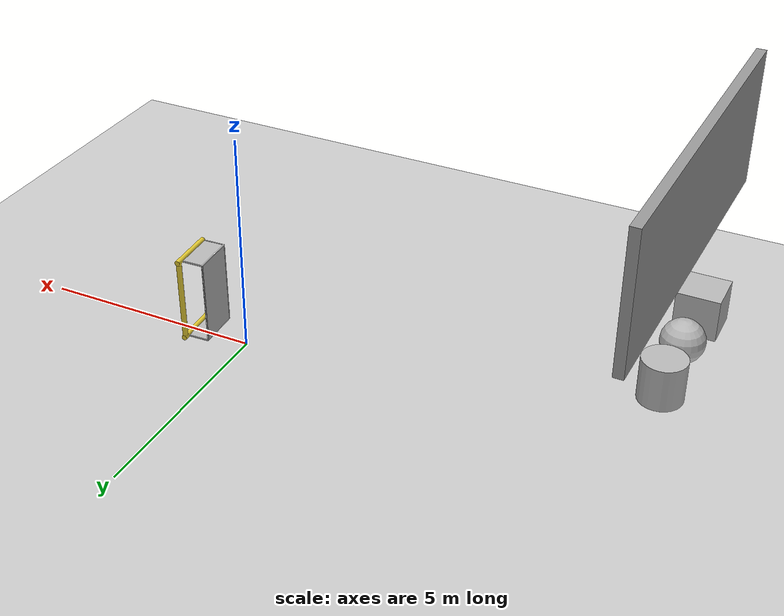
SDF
<sdf version="1.4">
 <world name="default">
  <model name="ground_plane">
   <static>1</static>
   <link name="link">
    <collision name="collision">
     <geometry><plane><normal>0 0 1</normal><size>100 100</size></plane></geometry>
     <surface><friction><ode><mu>100</mu><mu2>50</mu2></ode></friction></surface>
    </collision>
    <visual name="visual">
     <cast_shadows>0</cast_shadows>
     <geometry><plane><normal>0 0 1</normal><size>100 100</size></plane></geometry>
     <material>
      <script><uri>file://media/materials/scripts/gazebo.material</uri><name>Gazebo/Grey</name></script>
     </material>
    </visual>
    <velocity_decay><linear>0</linear><angular>0</angular></velocity_decay>
   </link>
  </model>
  <model name="grey_wall">
   <static>1</static>
   <link name="link">
    <pose>0 0 1.4 0 -0 0</pose>
    <collision name="collision"><geometry><box><size>7.5 0.2 2.8</size></box></geometry></collision>
    <visual name="visual">
     <cast_shadows>0</cast_shadows>
     <geometry><box><size>7.5 0.2 2.8</size></box></geometry>
     <material>
      <script>
       <uri>model://grey_wall/materials/scripts</uri>
       <uri>model://grey_wall/materials/textures</uri>
       <name>vrc/grey_wall</name>
      </script>
     </material>
    </visual>
    <velocity_decay><linear>0</linear><angular>0</angular></velocity_decay>
   </link>
   <pose>-9.25714 -0.23164 4.42606 0 -0 1.55593</pose>
  </model>
  <model name="textured_shapes">
   <pose>-8.70069 -3.6194 0.55 0 -0 0</pose>
   <link name="box">
    <pose>0 -1.5 0 0 -0 0</pose>
    <collision name="collision"><geometry><box><size>1 1 1</size></box></geometry></collision>
    <visual name="visual">
     <geometry><box><size>1 1 1</size></box></geometry>
     <material>
      <script>
       <uri>model://textured_shapes/materials/scripts</uri>
       <uri>model://textured_shapes/materials/textures</uri>
       <name>TexturedShape/Squares</name>
      </script>
     </material>
    </visual>
    <velocity_decay><linear>0</linear><angular>0</angular></velocity_decay>
    <inertial>
     <inertia><ixx>1</ixx><ixy>0</ixy><ixz>0</ixz><iyy>1</iyy><iyz>0</iyz><izz>1</izz></inertia>
     <mass>1</mass>
    </inertial>
   </link>
   <link name="sphere">
    <collision name="collision"><geometry><sphere><radius>0.5</radius></sphere></geometry></collision>
    <visual name="visual">
     <geometry><sphere><radius>0.5</radius></sphere></geometry>
     <material>
      <script>
       <uri>model://textured_shapes/materials/scripts</uri>
       <uri>model://textured_shapes/materials/textures</uri>
       <name>TexturedShape/Squares</name>
      </script>
     </material>
    </visual>
    <velocity_decay><linear>0</linear><angular>0</angular></velocity_decay>
    <inertial>
     <inertia><ixx>1</ixx><ixy>0</ixy><ixz>0</ixz><iyy>1</iyy><iyz>0</iyz><izz>1</izz></inertia>
     <mass>1</mass>
    </inertial>
   </link>
   <link name="cylinder">
    <pose>0 1.5 0 0 -0 0</pose>
    <collision name="collision">
     <geometry><cylinder><radius>0.5</radius><length>1</length></cylinder></geometry>
    </collision>
    <visual name="visual">
     <geometry><cylinder><radius>0.5</radius><length>1</length></cylinder></geometry>
     <material>
      <script>
       <uri>model://textured_shapes/materials/scripts</uri>
       <uri>model://textured_shapes/materials/textures</uri>
       <name>TexturedShape/Squares</name>
      </script>
     </material>
    </visual>
    <velocity_decay><linear>0</linear><angular>0</angular></velocity_decay>
    <inertial>
     <inertia><ixx>1</ixx><ixy>0</ixy><ixz>0</ixz><iyy>1</iyy><iyz>0</iyz><izz>1</izz></inertia>
     <mass>1</mass>
    </inertial>
   </link>
   <static>0</static>
  </model>
  <model name="RoboCup 2014 SPL Goal_2">
   <static>1</static>
   <link name="left_post">
    <pose>0 0.8 0.45 0 -0 0</pose>
    <collision name="collision">
     <geometry><cylinder><radius>0.05</radius><length>0.9</length></cylinder></geometry>
    </collision>
    <visual name="visual">
     <geometry><cylinder><radius>0.05</radius><length>0.9</length></cylinder></geometry>
     <material>
      <script><uri>file://media/materials/scripts/gazebo.material</uri><name>Gazebo/ZincYellow</name></script>
     </material>
    </visual>
    <velocity_decay><linear>0</linear><angular>0</angular></velocity_decay>
   </link>
   <link name="left_support_horiz_lower">
    <pose>0.24 0.8 0.01 0 -0 0</pose>
    <collision name="collision"><geometry><box><size>0.38 0.02 0.02</size></box></geometry></collision>
    <visual name="visual">
     <geometry><box><size>0.38 0.02 0.02</size></box></geometry>
     <material>
      <script><uri>file://media/materials/scripts/gazebo.material</uri><name>Gazebo/White</name></script>
     </material>
    </visual>
    <velocity_decay><linear>0</linear><angular>0</angular></velocity_decay>
   </link>
   <link name="left_support_horiz_upper">
    <pose>0.24 0.8 0.79 0 -0 0</pose>
    <collision name="collision"><geometry><box><size>0.38 0.02 0.02</size></box></geometry></collision>
    <visual name="visual">
     <geometry><box><size>0.38 0.02 0.02</size></box></geometry>
     <material>
      <script><uri>file://media/materials/scripts/gazebo.material</uri><name>Gazebo/White</name></script>
     </material>
    </visual>
    <velocity_decay><linear>0</linear><angular>0</angular></velocity_decay>
   </link>
   <link name="left_support_vertical">
    <pose>0.44 0.8 0.4 3.14159 1.57079 3.14159</pose>
    <collision name="collision"><geometry><box><size>0.8 0.02 0.02</size></box></geometry></collision>
    <visual name="visual">
     <geometry><box><size>0.8 0.02 0.02</size></box></geometry>
     <material>
      <script><uri>file://media/materials/scripts/gazebo.material</uri><name>Gazebo/White</name></script>
     </material>
    </visual>
    <velocity_decay><linear>0</linear><angular>0</angular></velocity_decay>
   </link>
   <link name="right_support_horiz_lower">
    <pose>0.24 -0.8 0.01 0 -0 0</pose>
    <collision name="collision"><geometry><box><size>0.38 0.02 0.02</size></box></geometry></collision>
    <visual name="visual">
     <geometry><box><size>0.38 0.02 0.02</size></box></geometry>
     <material>
      <script><uri>file://media/materials/scripts/gazebo.material</uri><name>Gazebo/White</name></script>
     </material>
    </visual>
    <velocity_decay><linear>0</linear><angular>0</angular></velocity_decay>
   </link>
   <link name="right_support_horiz_upper">
    <pose>0.24 -0.8 0.79 0 -0 0</pose>
    <collision name="collision"><geometry><box><size>0.38 0.02 0.02</size></box></geometry></collision>
    <visual name="visual">
     <geometry><box><size>0.38 0.02 0.02</size></box></geometry>
     <material>
      <script><uri>file://media/materials/scripts/gazebo.material</uri><name>Gazebo/White</name></script>
     </material>
    </visual>
    <velocity_decay><linear>0</linear><angular>0</angular></velocity_decay>
   </link>
   <link name="right_support_vertical">
    <pose>0.44 -0.8 0.4 3.14159 1.57079 3.14159</pose>
    <collision name="collision"><geometry><box><size>0.8 0.02 0.02</size></box></geometry></collision>
    <visual name="visual">
     <geometry><box><size>0.8 0.02 0.02</size></box></geometry>
     <material>
      <script><uri>file://media/materials/scripts/gazebo.material</uri><name>Gazebo/White</name></script>
     </material>
    </visual>
    <velocity_decay><linear>0</linear><angular>0</angular></velocity_decay>
   </link>
   <link name="center_support_horiz_lower">
    <pose>0.44 0 0.01 3.14159 1.57079 3.14159</pose>
    <collision name="collision"><geometry><box><size>0.02 1.58 0.02</size></box></geometry></collision>
    <visual name="visual">
     <geometry><box><size>0.02 1.58 0.02</size></box></geometry>
     <material>
      <script><uri>file://media/materials/scripts/gazebo.material</uri><name>Gazebo/White</name></script>
     </material>
    </visual>
    <velocity_decay><linear>0</linear><angular>0</angular></velocity_decay>
   </link>
   <link name="center_support_horiz_upper">
    <pose>0.44 0 0.79 3.14159 1.57079 3.14159</pose>
    <collision name="collision"><geometry><box><size>0.02 1.58 0.02</size></box></geometry></collision>
    <visual name="visual">
     <geometry><box><size>0.02 1.58 0.02</size></box></geometry>
     <material>
      <script><uri>file://media/materials/scripts/gazebo.material</uri><name>Gazebo/White</name></script>
     </material>
    </visual>
    <velocity_decay><linear>0</linear><angular>0</angular></velocity_decay>
   </link>
   <link name="right_post">
    <pose>0 -0.8 0.45 0 -0 0</pose>
    <collision name="collision">
     <geometry><cylinder><radius>0.05</radius><length>0.9</length></cylinder></geometry>
    </collision>
    <visual name="visual">
     <geometry><cylinder><radius>0.05</radius><length>0.9</length></cylinder></geometry>
     <material>
      <script><uri>file://media/materials/scripts/gazebo.material</uri><name>Gazebo/ZincYellow</name></script>
     </material>
    </visual>
    <velocity_decay><linear>0</linear><angular>0</angular></velocity_decay>
   </link>
   <link name="crossbar">
    <pose>0 0 0.85 1.57 1.57 1.39418e-13</pose>
    <collision name="collision">
     <geometry><cylinder><radius>0.05</radius><length>1.5</length></cylinder></geometry>
    </collision>
    <visual name="visual">
     <geometry><cylinder><radius>0.05</radius><length>1.5</length></cylinder></geometry>
     <material>
      <script><uri>file://media/materials/scripts/gazebo.material</uri><name>Gazebo/ZincYellow</name></script>
     </material>
    </visual>
    <velocity_decay><linear>0</linear><angular>0</angular></velocity_decay>
   </link>
   <link name="center_net">
    <pose>0.44 0 0.4 0 -0 0</pose>
    <collision name="collision"><geometry><box><size>0.01 1.6 0.8</size></box></geometry></collision>
    <visual name="visual">
     <geometry><box><size>0.01 1.6 0.8</size></box></geometry>
     <material>
      <script>
       <uri>model://robocup09_spl_field/materials/scripts/</uri>
       <uri>model://robocup09_spl_field/materials/textures/</uri>
       <name>RoboCup/Net</name>
      </script>
     </material>
    </visual>
    <velocity_decay><linear>0</linear><angular>0</angular></velocity_decay>
   </link>
   <link name="left_net">
    <pose>0.24 0.8 0.4 0 -0 0</pose>
    <collision name="collision"><geometry><box><size>0.38 0.01 0.76</size></box></geometry></collision>
    <visual name="visual">
     <geometry><box><size>0.38 0.01 0.76</size></box></geometry>
     <material>
      <script>
       <uri>model://robocup09_spl_field/materials/scripts/</uri>
       <uri>model://robocup09_spl_field/materials/textures/</uri>
       <name>RoboCup/Net</name>
      </script>
     </material>
    </visual>
    <velocity_decay><linear>0</linear><angular>0</angular></velocity_decay>
   </link>
   <link name="right_net">
    <pose>0.24 -0.8 0.4 0 -0 0</pose>
    <collision name="collision"><geometry><box><size>0.38 0.01 0.76</size></box></geometry></collision>
    <visual name="visual">
     <geometry><box><size>0.38 0.01 0.76</size></box></geometry>
     <material>
      <script>
       <uri>model://robocup09_spl_field/materials/scripts/</uri>
       <uri>model://robocup09_spl_field/materials/textures/</uri>
       <name>RoboCup/Net</name>
      </script>
     </material>
    </visual>
    <velocity_decay><linear>0</linear><angular>0</angular></velocity_decay>
   </link>
   <pose>-1.23457 3.19255 3.91839 1.58057 -0.004182 -3.10577</pose>
  </model>
 </world>
</sdf>
